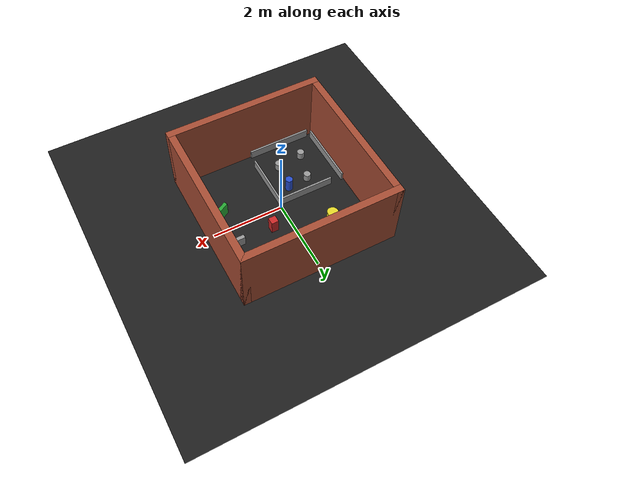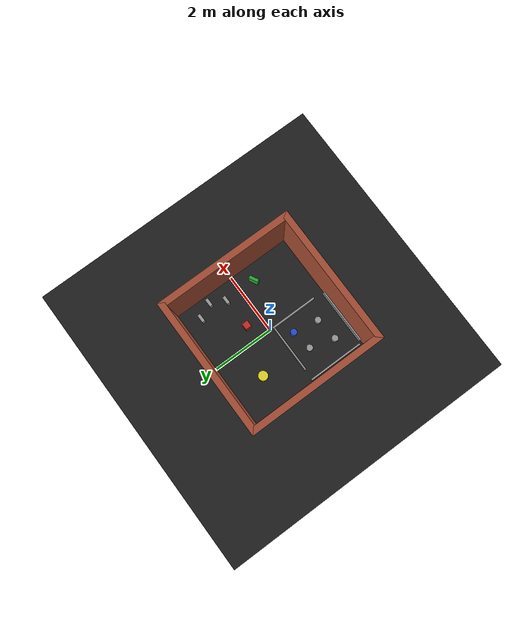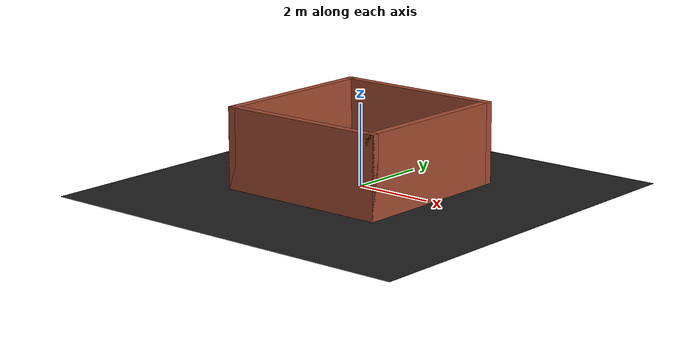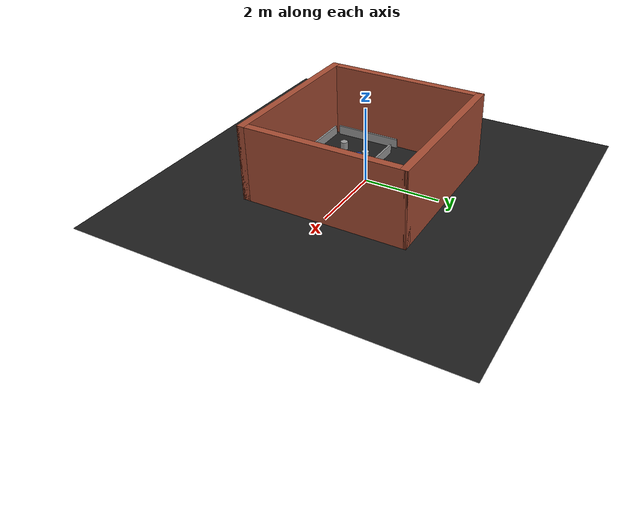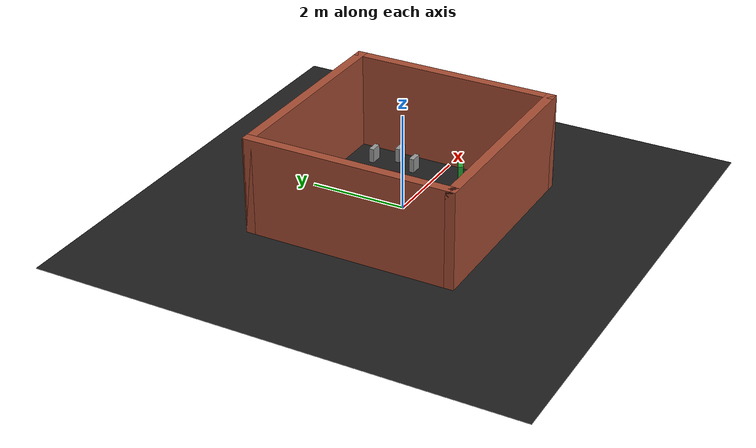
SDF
<sdf version="1.6">
 <world name="default">
  <model name="obstacle_box_1">
   <pose>0.5 0.5 0.2 0 0 0</pose>
   <static>1</static>
   <link name="link">
    <collision name="collision"><geometry><box><size>0.2 0.2 0.4</size></box></geometry></collision>
    <visual name="visual">
     <geometry><box><size>0.2 0.2 0.4</size></box></geometry>
     <material>
      <script><uri>file://media/materials/scripts/gazebo.material</uri><name>Gazebo/Red</name></script>
     </material>
    </visual>
   </link>
  </model>
  <model name="obstacle_cylinder_1">
   <pose>-0.5 -0.5 0.2 0 0 0</pose>
   <static>1</static>
   <link name="link">
    <collision name="collision">
     <geometry><cylinder><radius>0.1</radius><length>0.4</length></cylinder></geometry>
    </collision>
    <visual name="visual">
     <geometry><cylinder><radius>0.1</radius><length>0.4</length></cylinder></geometry>
     <material>
      <script><uri>file://media/materials/scripts/gazebo.material</uri><name>Gazebo/Blue</name></script>
     </material>
    </visual>
   </link>
  </model>
  <model name="obstacle_box_2">
   <pose>1.5 -0.5 0.2 0 0 0.5</pose>
   <static>1</static>
   <link name="link">
    <collision name="collision"><geometry><box><size>0.3 0.1 0.4</size></box></geometry></collision>
    <visual name="visual">
     <geometry><box><size>0.3 0.1 0.4</size></box></geometry>
     <material>
      <script><uri>file://media/materials/scripts/gazebo.material</uri><name>Gazebo/Green</name></script>
     </material>
    </visual>
   </link>
  </model>
  <model name="obstacle_cylinder_2">
   <pose>-1.0 1.0 0.2 0 0 0</pose>
   <static>1</static>
   <link name="link">
    <collision name="collision">
     <geometry><cylinder><radius>0.15</radius><length>0.4</length></cylinder></geometry>
    </collision>
    <visual name="visual">
     <geometry><cylinder><radius>0.15</radius><length>0.4</length></cylinder></geometry>
     <material>
      <script><uri>file://media/materials/scripts/gazebo.material</uri><name>Gazebo/Yellow</name></script>
     </material>
    </visual>
   </link>
  </model>
  <model name="wall_north">
   <pose>0 2.1 1 0 0 0</pose>
   <static>1</static>
   <link name="link">
    <collision name="collision"><geometry><box><size>4.4 0.2 2</size></box></geometry></collision>
    <visual name="visual">
     <geometry><box><size>4.4 0.2 2</size></box></geometry>
     <material>
      <script><uri>file://media/materials/scripts/gazebo.material</uri><name>Gazebo/Bricks</name></script>
     </material>
    </visual>
   </link>
  </model>
  <model name="wall_south">
   <pose>0 -2.1 1 0 0 0</pose>
   <static>1</static>
   <link name="link">
    <collision name="collision"><geometry><box><size>4.4 0.2 2</size></box></geometry></collision>
    <visual name="visual">
     <geometry><box><size>4.4 0.2 2</size></box></geometry>
     <material>
      <script><uri>file://media/materials/scripts/gazebo.material</uri><name>Gazebo/Bricks</name></script>
     </material>
    </visual>
   </link>
  </model>
  <model name="wall_east">
   <pose>2.1 0 1 0 0 0</pose>
   <static>1</static>
   <link name="link">
    <collision name="collision"><geometry><box><size>0.2 4.4 2</size></box></geometry></collision>
    <visual name="visual">
     <geometry><box><size>0.2 4.4 2</size></box></geometry>
     <material>
      <script><uri>file://media/materials/scripts/gazebo.material</uri><name>Gazebo/Bricks</name></script>
     </material>
    </visual>
   </link>
  </model>
  <model name="wall_west">
   <pose>-2.1 0 1 0 0 0</pose>
   <static>1</static>
   <link name="link">
    <collision name="collision"><geometry><box><size>0.2 4.4 2</size></box></geometry></collision>
    <visual name="visual">
     <geometry><box><size>0.2 4.4 2</size></box></geometry>
     <material>
      <script><uri>file://media/materials/scripts/gazebo.material</uri><name>Gazebo/Bricks</name></script>
     </material>
    </visual>
   </link>
  </model>
  <model name="ground2">
   <pose>0 0 -0.1 0 -0 0</pose>
   <static>1</static>
   <link name="ground">
    <collision name="ground_coll"><geometry><box><size>8 8 0.01</size></box></geometry></collision>
    <visual name="ground_vis">
     <geometry><box><size>10 10 0.01</size></box></geometry>
     <material>
      <script><uri>file://media/materials/scripts/gazebo.material</uri><name>Gazebo/FlatBlack</name></script>
     </material>
    </visual>
   </link>
  </model>
  <model name="tunnel_wall">
   <link name="Wall_1">
    <pose>-0.980783 0.049883 0 0 -0 1.5708</pose>
    <visual name="Wall_1_Visual">
     <pose>0 0 0.125 0 -0 0</pose>
     <geometry><box><size>1.8 0.05 0.25</size></box></geometry>
     <material>
      <script><uri>file://media/materials/scripts/gazebo.material</uri><name>Gazebo/Grey</name></script>
      <ambient>1 1 1 1</ambient>
      <diffuse>0.7 0.7 0.7 1</diffuse>
      <specular>0.01 0.01 0.01 1</specular>
      <emissive>0 0 0 1</emissive>
     </material>
    </visual>
    <collision name="Wall_1_Collision">
     <pose>0 0 0.125 0 -0 0</pose>
     <geometry><box><size>1.8 0.05 0.25</size></box></geometry>
     <surface>
      <friction>
       <ode><mu>1</mu><mu2>1</mu2><fdir1>0 0 0</fdir1><slip1>0</slip1><slip2>0</slip2></ode>
       <torsional>
        <coefficient>1</coefficient>
        <patch_radius>0</patch_radius>
        <surface_radius>0</surface_radius>
        <use_patch_radius>1</use_patch_radius>
        <ode><slip>0</slip></ode>
       </torsional>
      </friction>
      <bounce><restitution_coefficient>0</restitution_coefficient><threshold>1e+06</threshold></bounce>
      <contact>
       <collide_without_contact>0</collide_without_contact>
       <collide_without_contact_bitmask>1</collide_without_contact_bitmask>
       <collide_bitmask>1</collide_bitmask>
       <ode>
        <soft_cfm>0</soft_cfm>
        <soft_erp>0.2</soft_erp>
        <kp>1e+13</kp>
        <kd>1</kd>
        <max_vel>0.01</max_vel>
        <min_depth>0</min_depth>
       </ode>
       <bullet>
        <split_impulse>1</split_impulse>
        <split_impulse_penetration_threshold>-0.01</split_impulse_penetration_threshold>
        <soft_cfm>0</soft_cfm>
        <soft_erp>0.2</soft_erp>
        <kp>1e+13</kp>
        <kd>1</kd>
       </bullet>
      </contact>
     </surface>
    </collision>
   </link>
   <link name="Wall_2">
    <pose>0 -0.935438 0 0 -0 0</pose>
    <visual name="Wall_2_Visual">
     <pose>0 0 0.125 0 -0 0</pose>
     <geometry><box><size>1.8 0.05 0.25</size></box></geometry>
     <material>
      <script><uri>file://media/materials/scripts/gazebo.material</uri><name>Gazebo/Grey</name></script>
      <ambient>1 1 1 1</ambient>
      <diffuse>0.7 0.7 0.7 1</diffuse>
      <specular>0.01 0.01 0.01 1</specular>
      <emissive>0 0 0 1</emissive>
     </material>
    </visual>
    <collision name="Wall_2_Collision">
     <pose>0 0 0.125 0 -0 0</pose>
     <geometry><box><size>1.8 0.05 0.25</size></box></geometry>
     <surface>
      <friction>
       <ode><mu>1</mu><mu2>1</mu2><fdir1>0 0 0</fdir1><slip1>0</slip1><slip2>0</slip2></ode>
       <torsional>
        <coefficient>1</coefficient>
        <patch_radius>0</patch_radius>
        <surface_radius>0</surface_radius>
        <use_patch_radius>1</use_patch_radius>
        <ode><slip>0</slip></ode>
       </torsional>
      </friction>
      <bounce><restitution_coefficient>0</restitution_coefficient><threshold>1e+06</threshold></bounce>
      <contact>
       <collide_without_contact>0</collide_without_contact>
       <collide_without_contact_bitmask>1</collide_without_contact_bitmask>
       <collide_bitmask>1</collide_bitmask>
       <ode>
        <soft_cfm>0</soft_cfm>
        <soft_erp>0.2</soft_erp>
        <kp>1e+13</kp>
        <kd>1</kd>
        <max_vel>0.01</max_vel>
        <min_depth>0</min_depth>
       </ode>
       <bullet>
        <split_impulse>1</split_impulse>
        <split_impulse_penetration_threshold>-0.01</split_impulse_penetration_threshold>
        <soft_cfm>0</soft_cfm>
        <soft_erp>0.2</soft_erp>
        <kp>1e+13</kp>
        <kd>1</kd>
       </bullet>
      </contact>
     </surface>
    </collision>
   </link>
   <link name="Wall_3">
    <pose>0.943396 0.183669 0 0 -0 1.5708</pose>
    <inertial>
     <inertia><ixx>nan</ixx><ixy>0</ixy><ixz>0</ixz><iyy>nan</iyy><iyz>0</iyz><izz>nan</izz></inertia>
     <mass>0</mass>
    </inertial>
    <visual name="Wall_3_Visual">
     <pose>0 0 0.125 0 -0 0</pose>
     <geometry><box><size>1.53699 0.05 0.25</size></box></geometry>
     <material>
      <script><uri>file://media/materials/scripts/gazebo.material</uri><name>Gazebo/Grey</name></script>
      <ambient>1 1 1 1</ambient>
      <diffuse>0.7 0.7 0.7 1</diffuse>
      <specular>0.01 0.01 0.01 1</specular>
      <emissive>0 0 0 1</emissive>
     </material>
    </visual>
    <collision name="Wall_3_Collision">
     <pose>0 0 0.125 0 -0 0</pose>
     <geometry><box><size>1.53699 0.05 0.25</size></box></geometry>
     <surface>
      <friction>
       <ode><mu>1</mu><mu2>1</mu2><fdir1>0 0 0</fdir1><slip1>0</slip1><slip2>0</slip2></ode>
       <torsional>
        <coefficient>1</coefficient>
        <patch_radius>0</patch_radius>
        <surface_radius>0</surface_radius>
        <use_patch_radius>1</use_patch_radius>
        <ode><slip>0</slip></ode>
       </torsional>
      </friction>
      <bounce><restitution_coefficient>0</restitution_coefficient><threshold>1e+06</threshold></bounce>
      <contact>
       <collide_without_contact>0</collide_without_contact>
       <collide_without_contact_bitmask>1</collide_without_contact_bitmask>
       <collide_bitmask>1</collide_bitmask>
       <ode>
        <soft_cfm>0</soft_cfm>
        <soft_erp>0.2</soft_erp>
        <kp>1e+13</kp>
        <kd>1</kd>
        <max_vel>0.01</max_vel>
        <min_depth>0</min_depth>
       </ode>
       <bullet>
        <split_impulse>1</split_impulse>
        <split_impulse_penetration_threshold>-0.01</split_impulse_penetration_threshold>
        <soft_cfm>0</soft_cfm>
        <soft_erp>0.2</soft_erp>
        <kp>1e+13</kp>
        <kd>1</kd>
       </bullet>
      </contact>
     </surface>
    </collision>
   </link>
   <link name="Wall_4">
    <pose>0.15 0.915 0 0 -0 3.14159</pose>
    <visual name="Wall_4_Visual">
     <pose>0 0 0.125 0 -0 0</pose>
     <geometry><box><size>1.58 0.05 0.25</size></box></geometry>
     <material>
      <script><uri>file://media/materials/scripts/gazebo.material</uri><name>Gazebo/Grey</name></script>
      <ambient>1 1 1 1</ambient>
      <diffuse>0.7 0.7 0.7 1</diffuse>
      <specular>0.01 0.01 0.01 1</specular>
      <emissive>0 0 0 1</emissive>
     </material>
    </visual>
    <collision name="Wall_4_Collision">
     <pose>0 0 0.125 0 -0 0</pose>
     <geometry><box><size>1.58 0.05 0.25</size></box></geometry>
     <surface>
      <friction>
       <ode><mu>1</mu><mu2>1</mu2><fdir1>0 0 0</fdir1><slip1>0</slip1><slip2>0</slip2></ode>
       <torsional>
        <coefficient>1</coefficient>
        <patch_radius>0</patch_radius>
        <surface_radius>0</surface_radius>
        <use_patch_radius>1</use_patch_radius>
        <ode><slip>0</slip></ode>
       </torsional>
      </friction>
      <bounce><restitution_coefficient>0</restitution_coefficient><threshold>1e+06</threshold></bounce>
      <contact>
       <collide_without_contact>0</collide_without_contact>
       <collide_without_contact_bitmask>1</collide_without_contact_bitmask>
       <collide_bitmask>1</collide_bitmask>
       <ode>
        <soft_cfm>0</soft_cfm>
        <soft_erp>0.2</soft_erp>
        <kp>1e+13</kp>
        <kd>1</kd>
        <max_vel>0.01</max_vel>
        <min_depth>0</min_depth>
       </ode>
       <bullet>
        <split_impulse>1</split_impulse>
        <split_impulse_penetration_threshold>-0.01</split_impulse_penetration_threshold>
        <soft_cfm>0</soft_cfm>
        <soft_erp>0.2</soft_erp>
        <kp>1e+13</kp>
        <kd>1</kd>
       </bullet>
      </contact>
     </surface>
    </collision>
   </link>
   <static>1</static>
   <pose>-0.964699 -1.03574 0 0 -0 0</pose>
  </model>
  <model name="tunnel_obstacle">
   <link name="obstacle_1">
    <pose>0.42322 -0.212034 0.0 0 -0 0</pose>
    <inertial>
     <mass>0.0416663</mass>
     <inertia>
      <ixx>0.00098188</ixx>
      <ixy>0</ixy>
      <ixz>0</ixz>
      <iyy>0.00098188</iyy>
      <iyz>0</iyz>
      <izz>0.00046751</izz>
     </inertia>
    </inertial>
    <visual name="visual">
     <geometry><cylinder><radius>0.1</radius><length>0.25</length></cylinder></geometry>
     <material>
      <lighting>1</lighting>
      <script><uri>file://media/materials/scripts/gazebo.material</uri><name>Gazebo/Grey</name></script>
      <ambient>0.3 0.3 0.3 1</ambient>
      <diffuse>0.7 0.7 0.7 1</diffuse>
      <specular>0.01 0.01 0.01 1</specular>
      <emissive>0 0 0 1</emissive>
      <shader type="pixel"><normal_map>__default__</normal_map></shader>
     </material>
    </visual>
    <collision name="collision">
     <geometry><cylinder><radius>0.1</radius><length>0.46418</length></cylinder></geometry>
     <surface>
      <friction>
       <ode><mu>1</mu><mu2>1</mu2><fdir1>0 0 0</fdir1><slip1>0</slip1><slip2>0</slip2></ode>
       <torsional>
        <coefficient>1</coefficient>
        <patch_radius>0</patch_radius>
        <surface_radius>0</surface_radius>
        <use_patch_radius>1</use_patch_radius>
        <ode><slip>0</slip></ode>
       </torsional>
      </friction>
      <bounce><restitution_coefficient>0</restitution_coefficient><threshold>1e+06</threshold></bounce>
      <contact>
       <collide_without_contact>0</collide_without_contact>
       <collide_without_contact_bitmask>1</collide_without_contact_bitmask>
       <collide_bitmask>1</collide_bitmask>
       <ode>
        <soft_cfm>0</soft_cfm>
        <soft_erp>0.2</soft_erp>
        <kp>1e+13</kp>
        <kd>1</kd>
        <max_vel>0.01</max_vel>
        <min_depth>0</min_depth>
       </ode>
       <bullet>
        <split_impulse>1</split_impulse>
        <split_impulse_penetration_threshold>-0.01</split_impulse_penetration_threshold>
        <soft_cfm>0</soft_cfm>
        <soft_erp>0.2</soft_erp>
        <kp>1e+13</kp>
        <kd>1</kd>
       </bullet>
      </contact>
     </surface>
    </collision>
   </link>
   <link name="obstacle_2">
    <pose>-0.323729 -0.287563 0.0 0 -0 0</pose>
    <inertial>
     <mass>0.0416663</mass>
     <inertia>
      <ixx>0.00098188</ixx>
      <ixy>0</ixy>
      <ixz>0</ixz>
      <iyy>0.00098188</iyy>
      <iyz>0</iyz>
      <izz>0.00046751</izz>
     </inertia>
    </inertial>
    <visual name="visual">
     <geometry><cylinder><radius>0.1</radius><length>0.25</length></cylinder></geometry>
     <material>
      <lighting>1</lighting>
      <script><uri>file://media/materials/scripts/gazebo.material</uri><name>Gazebo/Grey</name></script>
      <ambient>0.3 0.3 0.3 1</ambient>
      <diffuse>0.7 0.7 0.7 1</diffuse>
      <specular>0.01 0.01 0.01 1</specular>
      <emissive>0 0 0 1</emissive>
      <shader type="pixel"><normal_map>__default__</normal_map></shader>
     </material>
    </visual>
    <collision name="collision">
     <geometry><cylinder><radius>0.1</radius><length>0.46418</length></cylinder></geometry>
     <surface>
      <friction>
       <ode><mu>1</mu><mu2>1</mu2><fdir1>0 0 0</fdir1><slip1>0</slip1><slip2>0</slip2></ode>
       <torsional>
        <coefficient>1</coefficient>
        <patch_radius>0</patch_radius>
        <surface_radius>0</surface_radius>
        <use_patch_radius>1</use_patch_radius>
        <ode><slip>0</slip></ode>
       </torsional>
      </friction>
      <bounce><restitution_coefficient>0</restitution_coefficient><threshold>1e+06</threshold></bounce>
      <contact>
       <collide_without_contact>0</collide_without_contact>
       <collide_without_contact_bitmask>1</collide_without_contact_bitmask>
       <collide_bitmask>1</collide_bitmask>
       <ode>
        <soft_cfm>0</soft_cfm>
        <soft_erp>0.2</soft_erp>
        <kp>1e+13</kp>
        <kd>1</kd>
        <max_vel>0.01</max_vel>
        <min_depth>0</min_depth>
       </ode>
       <bullet>
        <split_impulse>1</split_impulse>
        <split_impulse_penetration_threshold>-0.01</split_impulse_penetration_threshold>
        <soft_cfm>0</soft_cfm>
        <soft_erp>0.2</soft_erp>
        <kp>1e+13</kp>
        <kd>1</kd>
       </bullet>
      </contact>
     </surface>
    </collision>
   </link>
   <link name="obstacle_3">
    <pose>-0.099492 0.499594 0.0 0 -0 0</pose>
    <inertial>
     <mass>0.0416663</mass>
     <inertia>
      <ixx>0.00098188</ixx>
      <ixy>0</ixy>
      <ixz>0</ixz>
      <iyy>0.00098188</iyy>
      <iyz>0</iyz>
      <izz>0.00046751</izz>
     </inertia>
    </inertial>
    <visual name="visual">
     <geometry><cylinder><radius>0.1</radius><length>0.25</length></cylinder></geometry>
     <material>
      <lighting>1</lighting>
      <script><uri>file://media/materials/scripts/gazebo.material</uri><name>Gazebo/Grey</name></script>
      <ambient>0.3 0.3 0.3 1</ambient>
      <diffuse>0.7 0.7 0.7 1</diffuse>
      <specular>0.01 0.01 0.01 1</specular>
      <emissive>0 0 0 1</emissive>
      <shader type="pixel"><normal_map>__default__</normal_map></shader>
     </material>
    </visual>
    <collision name="collision">
     <geometry><cylinder><radius>0.1</radius><length>0.46418</length></cylinder></geometry>
     <surface>
      <friction>
       <ode><mu>1</mu><mu2>1</mu2><fdir1>0 0 0</fdir1><slip1>0</slip1><slip2>0</slip2></ode>
       <torsional>
        <coefficient>1</coefficient>
        <patch_radius>0</patch_radius>
        <surface_radius>0</surface_radius>
        <use_patch_radius>1</use_patch_radius>
        <ode><slip>0</slip></ode>
       </torsional>
      </friction>
      <bounce><restitution_coefficient>0</restitution_coefficient><threshold>1e+06</threshold></bounce>
      <contact>
       <collide_without_contact>0</collide_without_contact>
       <collide_without_contact_bitmask>1</collide_without_contact_bitmask>
       <collide_bitmask>1</collide_bitmask>
       <ode>
        <soft_cfm>0</soft_cfm>
        <soft_erp>0.2</soft_erp>
        <kp>1e+13</kp>
        <kd>1</kd>
        <max_vel>0.01</max_vel>
        <min_depth>0</min_depth>
       </ode>
       <bullet>
        <split_impulse>1</split_impulse>
        <split_impulse_penetration_threshold>-0.01</split_impulse_penetration_threshold>
        <soft_cfm>0</soft_cfm>
        <soft_erp>0.2</soft_erp>
        <kp>1e+13</kp>
        <kd>1</kd>
       </bullet>
      </contact>
     </surface>
    </collision>
   </link>
   <static>1</static>
   <pose>-1.04145 -1.12671 0 0 -0 0</pose>
  </model>
  <model name="barrier_1">
   <link name="link">
    <inertial>
     <mass>1</mass>
     <inertia>
      <ixx>0.166667</ixx>
      <ixy>0</ixy>
      <ixz>0</ixz>
      <iyy>0.166667</iyy>
      <iyz>0</iyz>
      <izz>0.166667</izz>
     </inertia>
    </inertial>
    <visual name="visual">
     <geometry><box><size>0.25 0.1 0.3</size></box></geometry>
     <material>
      <script><name>Gazebo/Grey</name><uri>file://media/materials/scripts/gazebo.material</uri></script>
      <shader type="pixel"><normal_map>__default__</normal_map></shader>
      <ambient>0.3 0.3 0.3 1</ambient>
      <diffuse>0.7 0.7 0.7 1</diffuse>
      <specular>0.01 0.01 0.01 1</specular>
      <emissive>0 0 0 1</emissive>
     </material>
    </visual>
    <collision name="collision">
     <geometry><box><size>0.25 0.1 0.3</size></box></geometry>
     <surface>
      <friction>
       <ode><mu>1</mu><mu2>1</mu2><fdir1>0 0 0</fdir1><slip1>0</slip1><slip2>0</slip2></ode>
       <torsional>
        <coefficient>1</coefficient>
        <patch_radius>0</patch_radius>
        <surface_radius>0</surface_radius>
        <use_patch_radius>1</use_patch_radius>
        <ode><slip>0</slip></ode>
       </torsional>
      </friction>
      <bounce><restitution_coefficient>0</restitution_coefficient><threshold>1e+06</threshold></bounce>
      <contact>
       <collide_without_contact>0</collide_without_contact>
       <collide_without_contact_bitmask>1</collide_without_contact_bitmask>
       <collide_bitmask>1</collide_bitmask>
       <ode>
        <soft_cfm>0</soft_cfm>
        <soft_erp>0.2</soft_erp>
        <kp>1e+13</kp>
        <kd>1</kd>
        <max_vel>0.01</max_vel>
        <min_depth>0</min_depth>
       </ode>
       <bullet>
        <split_impulse>1</split_impulse>
        <split_impulse_penetration_threshold>-0.01</split_impulse_penetration_threshold>
        <soft_cfm>0</soft_cfm>
        <soft_erp>0.2</soft_erp>
        <kp>1e+13</kp>
        <kd>1</kd>
       </bullet>
      </contact>
     </surface>
    </collision>
   </link>
   <static>0</static>
   <pose>1.49 0.54 0.15 0 -0 0</pose>
  </model>
  <model name="barrier_2">
   <link name="link">
    <inertial>
     <mass>1</mass>
     <inertia>
      <ixx>0.166667</ixx>
      <ixy>0</ixy>
      <ixz>0</ixz>
      <iyy>0.166667</iyy>
      <iyz>0</iyz>
      <izz>0.166667</izz>
     </inertia>
    </inertial>
    <visual name="visual">
     <geometry><box><size>0.25 0.1 0.3</size></box></geometry>
     <material>
      <script><name>Gazebo/Grey</name><uri>file://media/materials/scripts/gazebo.material</uri></script>
      <shader type="pixel"><normal_map>__default__</normal_map></shader>
      <ambient>0.3 0.3 0.3 1</ambient>
      <diffuse>0.7 0.7 0.7 1</diffuse>
      <specular>0.01 0.01 0.01 1</specular>
      <emissive>0 0 0 1</emissive>
     </material>
    </visual>
    <collision name="collision">
     <geometry><box><size>0.25 0.1 0.3</size></box></geometry>
     <surface>
      <friction>
       <ode><mu>1</mu><mu2>1</mu2><fdir1>0 0 0</fdir1><slip1>0</slip1><slip2>0</slip2></ode>
       <torsional>
        <coefficient>1</coefficient>
        <patch_radius>0</patch_radius>
        <surface_radius>0</surface_radius>
        <use_patch_radius>1</use_patch_radius>
        <ode><slip>0</slip></ode>
       </torsional>
      </friction>
      <bounce><restitution_coefficient>0</restitution_coefficient><threshold>1e+06</threshold></bounce>
      <contact>
       <collide_without_contact>0</collide_without_contact>
       <collide_without_contact_bitmask>1</collide_without_contact_bitmask>
       <collide_bitmask>1</collide_bitmask>
       <ode>
        <soft_cfm>0</soft_cfm>
        <soft_erp>0.2</soft_erp>
        <kp>1e+13</kp>
        <kd>1</kd>
        <max_vel>0.01</max_vel>
        <min_depth>0</min_depth>
       </ode>
       <bullet>
        <split_impulse>1</split_impulse>
        <split_impulse_penetration_threshold>-0.01</split_impulse_penetration_threshold>
        <soft_cfm>0</soft_cfm>
        <soft_erp>0.2</soft_erp>
        <kp>1e+13</kp>
        <kd>1</kd>
       </bullet>
      </contact>
     </surface>
    </collision>
   </link>
   <static>0</static>
   <pose>1.74 1 0.15 0 -0 0</pose>
  </model>
  <model name="barrier_3">
   <link name="link">
    <inertial>
     <mass>1</mass>
     <inertia>
      <ixx>0.166667</ixx>
      <ixy>0</ixy>
      <ixz>0</ixz>
      <iyy>0.166667</iyy>
      <iyz>0</iyz>
      <izz>0.166667</izz>
     </inertia>
    </inertial>
    <visual name="visual">
     <geometry><box><size>0.25 0.1 0.3</size></box></geometry>
     <material>
      <script><name>Gazebo/Grey</name><uri>file://media/materials/scripts/gazebo.material</uri></script>
      <shader type="pixel"><normal_map>__default__</normal_map></shader>
      <ambient>0.3 0.3 0.3 1</ambient>
      <diffuse>0.7 0.7 0.7 1</diffuse>
      <specular>0.01 0.01 0.01 1</specular>
      <emissive>0 0 0 1</emissive>
     </material>
    </visual>
    <collision name="collision">
     <geometry><box><size>0.25 0.1 0.3</size></box></geometry>
     <surface>
      <friction>
       <ode><mu>1</mu><mu2>1</mu2><fdir1>0 0 0</fdir1><slip1>0</slip1><slip2>0</slip2></ode>
       <torsional>
        <coefficient>1</coefficient>
        <patch_radius>0</patch_radius>
        <surface_radius>0</surface_radius>
        <use_patch_radius>1</use_patch_radius>
        <ode><slip>0</slip></ode>
       </torsional>
      </friction>
      <bounce><restitution_coefficient>0</restitution_coefficient><threshold>1e+06</threshold></bounce>
      <contact>
       <collide_without_contact>0</collide_without_contact>
       <collide_without_contact_bitmask>1</collide_without_contact_bitmask>
       <collide_bitmask>1</collide_bitmask>
       <ode>
        <soft_cfm>0</soft_cfm>
        <soft_erp>0.2</soft_erp>
        <kp>1e+13</kp>
        <kd>1</kd>
        <max_vel>0.01</max_vel>
        <min_depth>0</min_depth>
       </ode>
       <bullet>
        <split_impulse>1</split_impulse>
        <split_impulse_penetration_threshold>-0.01</split_impulse_penetration_threshold>
        <soft_cfm>0</soft_cfm>
        <soft_erp>0.2</soft_erp>
        <kp>1e+13</kp>
        <kd>1</kd>
       </bullet>
      </contact>
     </surface>
    </collision>
   </link>
   <static>0</static>
   <pose>1.49 1.464 0.15 0 -0 0</pose>
  </model>
 </world>
</sdf>
